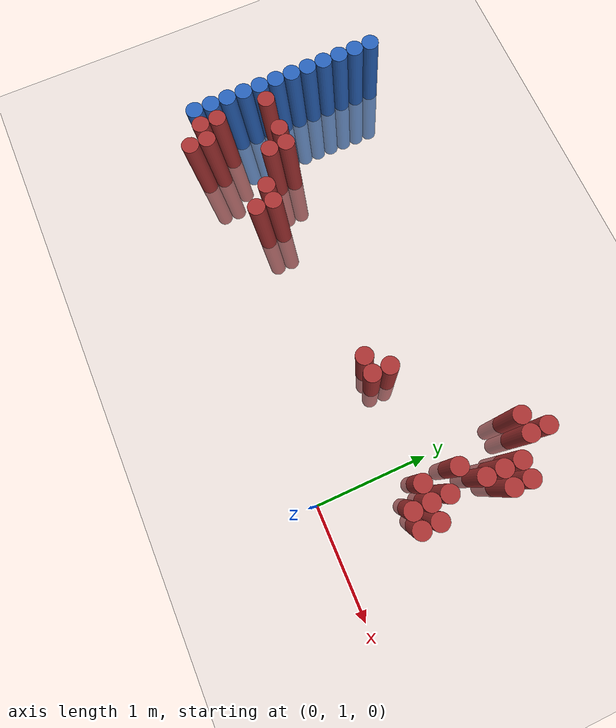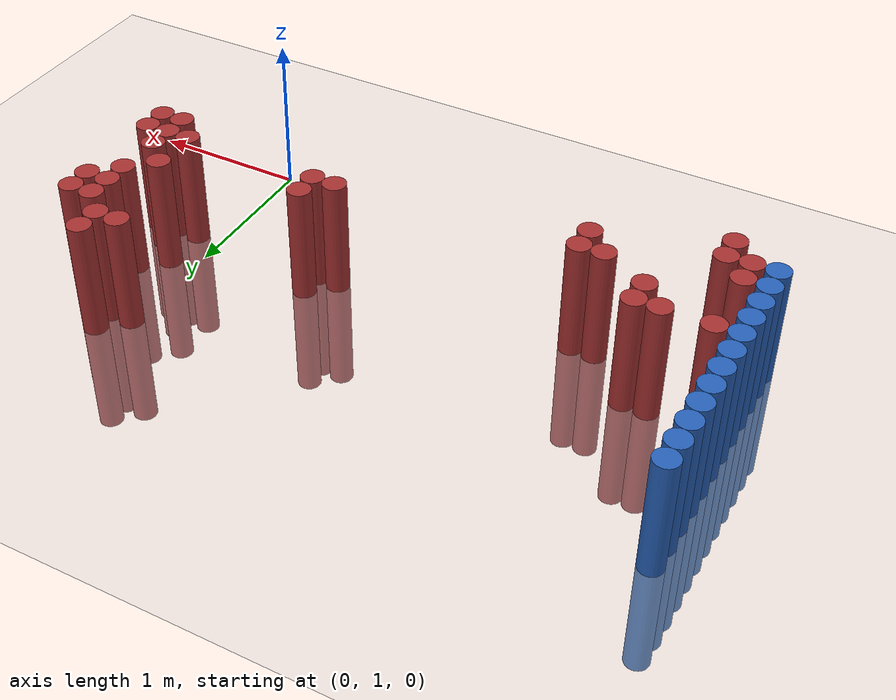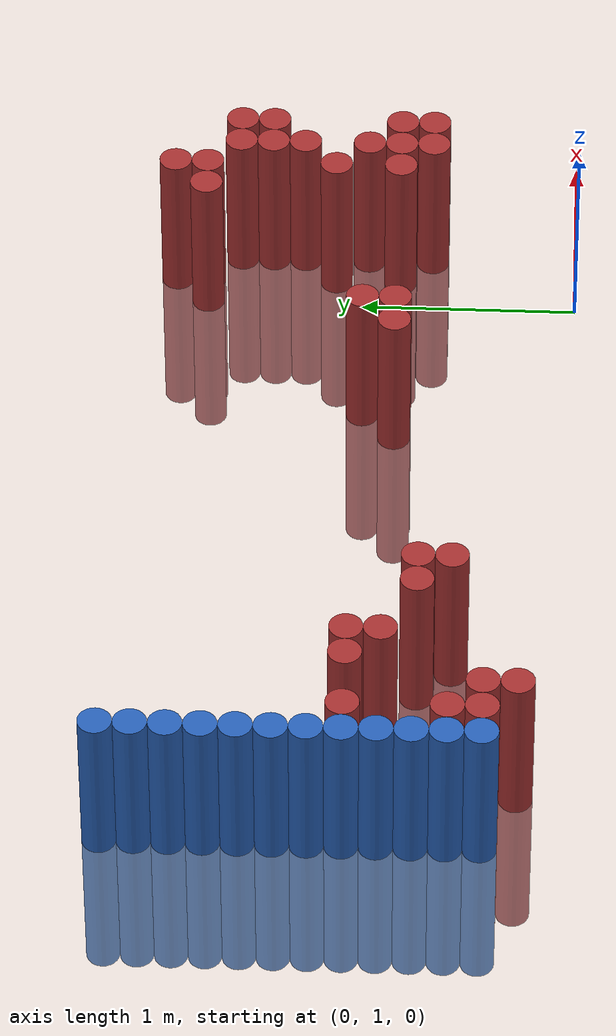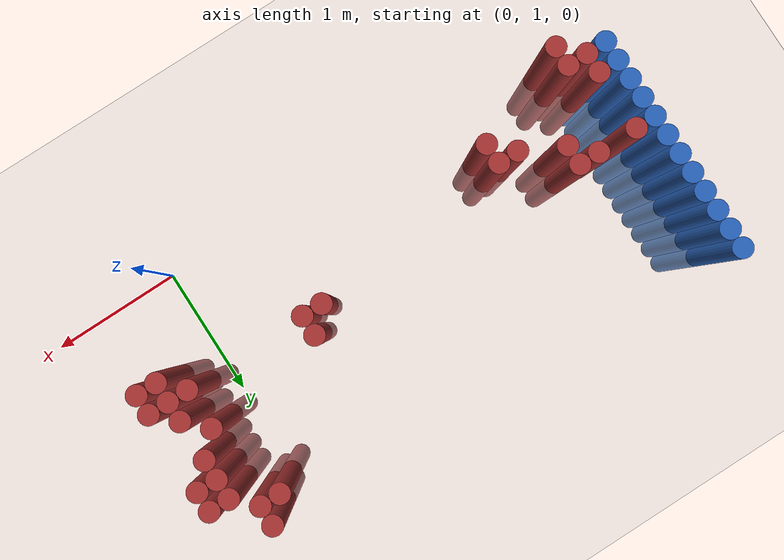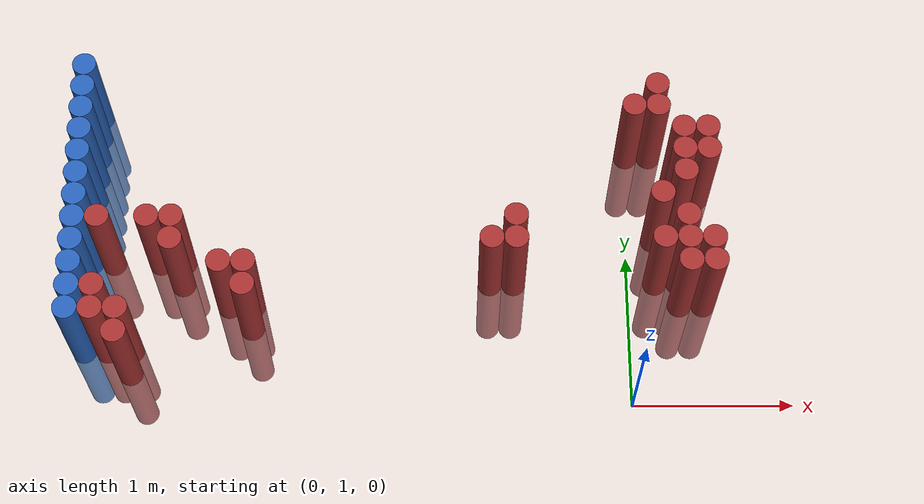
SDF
<sdf version="1.6">
 <world name="default">
  <model name="ground_plane">
   <static>1</static>
   <link name="link">
    <collision name="collision">
     <geometry><plane><normal>0 0 1</normal><size>100 100</size></plane></geometry>
     <surface><friction><ode><mu>100</mu><mu2>50</mu2></ode></friction></surface>
    </collision>
    <visual name="visual">
     <cast_shadows>0</cast_shadows>
     <geometry><plane><normal>0 0 1</normal><size>100 100</size></plane></geometry>
     <material>
      <script><uri>file://media/materials/scripts/gazebo.material</uri><name>Gazebo/Grey</name></script>
     </material>
    </visual>
   </link>
  </model>
  <model name="unit_cylinder_133">
   <static>1</static>
   <pose>-3.425000 1.375000 0.000000 0.000000 0.000000 0.000000</pose>
   <link name="link">
    <inertial>
     <mass>1</mass>
     <inertia><ixx>0.145833</ixx><ixy>0</ixy><ixz>0</ixz><iyy>0.145833</iyy><iyz>0</iyz><izz>0.125</izz></inertia>
    </inertial>
    <collision name="collision">
     <geometry><cylinder><radius>0.075000</radius><length>1.5</length></cylinder></geometry>
    </collision>
    <visual name="visual">
     <geometry><cylinder><radius>0.075000</radius><length>1.5</length></cylinder></geometry>
     <material>
      <ambient>0.152000 0.379000 0.720000 1</ambient>
      <diffuse>0.152000 0.379000 0.720000 1</diffuse>
     </material>
     <material>
      <script><name>Gazebo/Grey</name><uri>file://media/materials/scripts/gazebo.material</uri></script>
     </material>
    </visual>
   </link>
  </model>
  <model name="unit_cylinder_135">
   <static>1</static>
   <pose>-3.425000 1.525000 0.000000 0.000000 0.000000 0.000000</pose>
   <link name="link">
    <inertial>
     <mass>1</mass>
     <inertia><ixx>0.145833</ixx><ixy>0</ixy><ixz>0</ixz><iyy>0.145833</iyy><iyz>0</iyz><izz>0.125</izz></inertia>
    </inertial>
    <collision name="collision">
     <geometry><cylinder><radius>0.075000</radius><length>1.5</length></cylinder></geometry>
    </collision>
    <visual name="visual">
     <geometry><cylinder><radius>0.075000</radius><length>1.5</length></cylinder></geometry>
     <material>
      <ambient>0.152000 0.379000 0.720000 1</ambient>
      <diffuse>0.152000 0.379000 0.720000 1</diffuse>
     </material>
     <material>
      <script><name>Gazebo/Grey</name><uri>file://media/materials/scripts/gazebo.material</uri></script>
     </material>
    </visual>
   </link>
  </model>
  <model name="unit_cylinder_137">
   <static>1</static>
   <pose>-3.425000 1.675000 0.000000 0.000000 0.000000 0.000000</pose>
   <link name="link">
    <inertial>
     <mass>1</mass>
     <inertia><ixx>0.145833</ixx><ixy>0</ixy><ixz>0</ixz><iyy>0.145833</iyy><iyz>0</iyz><izz>0.125</izz></inertia>
    </inertial>
    <collision name="collision">
     <geometry><cylinder><radius>0.075000</radius><length>1.5</length></cylinder></geometry>
    </collision>
    <visual name="visual">
     <geometry><cylinder><radius>0.075000</radius><length>1.5</length></cylinder></geometry>
     <material>
      <ambient>0.152000 0.379000 0.720000 1</ambient>
      <diffuse>0.152000 0.379000 0.720000 1</diffuse>
     </material>
     <material>
      <script><name>Gazebo/Grey</name><uri>file://media/materials/scripts/gazebo.material</uri></script>
     </material>
    </visual>
   </link>
  </model>
  <model name="unit_cylinder_139">
   <static>1</static>
   <pose>-3.425000 1.825000 0.000000 0.000000 0.000000 0.000000</pose>
   <link name="link">
    <inertial>
     <mass>1</mass>
     <inertia><ixx>0.145833</ixx><ixy>0</ixy><ixz>0</ixz><iyy>0.145833</iyy><iyz>0</iyz><izz>0.125</izz></inertia>
    </inertial>
    <collision name="collision">
     <geometry><cylinder><radius>0.075000</radius><length>1.5</length></cylinder></geometry>
    </collision>
    <visual name="visual">
     <geometry><cylinder><radius>0.075000</radius><length>1.5</length></cylinder></geometry>
     <material>
      <ambient>0.152000 0.379000 0.720000 1</ambient>
      <diffuse>0.152000 0.379000 0.720000 1</diffuse>
     </material>
     <material>
      <script><name>Gazebo/Grey</name><uri>file://media/materials/scripts/gazebo.material</uri></script>
     </material>
    </visual>
   </link>
  </model>
  <model name="unit_cylinder_141">
   <static>1</static>
   <pose>-3.425000 1.975000 0.000000 0.000000 0.000000 0.000000</pose>
   <link name="link">
    <inertial>
     <mass>1</mass>
     <inertia><ixx>0.145833</ixx><ixy>0</ixy><ixz>0</ixz><iyy>0.145833</iyy><iyz>0</iyz><izz>0.125</izz></inertia>
    </inertial>
    <collision name="collision">
     <geometry><cylinder><radius>0.075000</radius><length>1.5</length></cylinder></geometry>
    </collision>
    <visual name="visual">
     <geometry><cylinder><radius>0.075000</radius><length>1.5</length></cylinder></geometry>
     <material>
      <ambient>0.152000 0.379000 0.720000 1</ambient>
      <diffuse>0.152000 0.379000 0.720000 1</diffuse>
     </material>
     <material>
      <script><name>Gazebo/Grey</name><uri>file://media/materials/scripts/gazebo.material</uri></script>
     </material>
    </visual>
   </link>
  </model>
  <model name="unit_cylinder_143">
   <static>1</static>
   <pose>-3.425000 2.125000 0.000000 0.000000 0.000000 0.000000</pose>
   <link name="link">
    <inertial>
     <mass>1</mass>
     <inertia><ixx>0.145833</ixx><ixy>0</ixy><ixz>0</ixz><iyy>0.145833</iyy><iyz>0</iyz><izz>0.125</izz></inertia>
    </inertial>
    <collision name="collision">
     <geometry><cylinder><radius>0.075000</radius><length>1.5</length></cylinder></geometry>
    </collision>
    <visual name="visual">
     <geometry><cylinder><radius>0.075000</radius><length>1.5</length></cylinder></geometry>
     <material>
      <ambient>0.152000 0.379000 0.720000 1</ambient>
      <diffuse>0.152000 0.379000 0.720000 1</diffuse>
     </material>
     <material>
      <script><name>Gazebo/Grey</name><uri>file://media/materials/scripts/gazebo.material</uri></script>
     </material>
    </visual>
   </link>
  </model>
  <model name="unit_cylinder_145">
   <static>1</static>
   <pose>-3.425000 2.275000 0.000000 0.000000 0.000000 0.000000</pose>
   <link name="link">
    <inertial>
     <mass>1</mass>
     <inertia><ixx>0.145833</ixx><ixy>0</ixy><ixz>0</ixz><iyy>0.145833</iyy><iyz>0</iyz><izz>0.125</izz></inertia>
    </inertial>
    <collision name="collision">
     <geometry><cylinder><radius>0.075000</radius><length>1.5</length></cylinder></geometry>
    </collision>
    <visual name="visual">
     <geometry><cylinder><radius>0.075000</radius><length>1.5</length></cylinder></geometry>
     <material>
      <ambient>0.152000 0.379000 0.720000 1</ambient>
      <diffuse>0.152000 0.379000 0.720000 1</diffuse>
     </material>
     <material>
      <script><name>Gazebo/Grey</name><uri>file://media/materials/scripts/gazebo.material</uri></script>
     </material>
    </visual>
   </link>
  </model>
  <model name="unit_cylinder_147">
   <static>1</static>
   <pose>-3.425000 2.425000 0.000000 0.000000 0.000000 0.000000</pose>
   <link name="link">
    <inertial>
     <mass>1</mass>
     <inertia><ixx>0.145833</ixx><ixy>0</ixy><ixz>0</ixz><iyy>0.145833</iyy><iyz>0</iyz><izz>0.125</izz></inertia>
    </inertial>
    <collision name="collision">
     <geometry><cylinder><radius>0.075000</radius><length>1.5</length></cylinder></geometry>
    </collision>
    <visual name="visual">
     <geometry><cylinder><radius>0.075000</radius><length>1.5</length></cylinder></geometry>
     <material>
      <ambient>0.152000 0.379000 0.720000 1</ambient>
      <diffuse>0.152000 0.379000 0.720000 1</diffuse>
     </material>
     <material>
      <script><name>Gazebo/Grey</name><uri>file://media/materials/scripts/gazebo.material</uri></script>
     </material>
    </visual>
   </link>
  </model>
  <model name="unit_cylinder_149">
   <static>1</static>
   <pose>-3.425000 2.575000 0.000000 0.000000 0.000000 0.000000</pose>
   <link name="link">
    <inertial>
     <mass>1</mass>
     <inertia><ixx>0.145833</ixx><ixy>0</ixy><ixz>0</ixz><iyy>0.145833</iyy><iyz>0</iyz><izz>0.125</izz></inertia>
    </inertial>
    <collision name="collision">
     <geometry><cylinder><radius>0.075000</radius><length>1.5</length></cylinder></geometry>
    </collision>
    <visual name="visual">
     <geometry><cylinder><radius>0.075000</radius><length>1.5</length></cylinder></geometry>
     <material>
      <ambient>0.152000 0.379000 0.720000 1</ambient>
      <diffuse>0.152000 0.379000 0.720000 1</diffuse>
     </material>
     <material>
      <script><name>Gazebo/Grey</name><uri>file://media/materials/scripts/gazebo.material</uri></script>
     </material>
    </visual>
   </link>
  </model>
  <model name="unit_cylinder_151">
   <static>1</static>
   <pose>-3.425000 2.725000 0.000000 0.000000 0.000000 0.000000</pose>
   <link name="link">
    <inertial>
     <mass>1</mass>
     <inertia><ixx>0.145833</ixx><ixy>0</ixy><ixz>0</ixz><iyy>0.145833</iyy><iyz>0</iyz><izz>0.125</izz></inertia>
    </inertial>
    <collision name="collision">
     <geometry><cylinder><radius>0.075000</radius><length>1.5</length></cylinder></geometry>
    </collision>
    <visual name="visual">
     <geometry><cylinder><radius>0.075000</radius><length>1.5</length></cylinder></geometry>
     <material>
      <ambient>0.152000 0.379000 0.720000 1</ambient>
      <diffuse>0.152000 0.379000 0.720000 1</diffuse>
     </material>
     <material>
      <script><name>Gazebo/Grey</name><uri>file://media/materials/scripts/gazebo.material</uri></script>
     </material>
    </visual>
   </link>
  </model>
  <model name="unit_cylinder_153">
   <static>1</static>
   <pose>-3.425000 2.875000 0.000000 0.000000 0.000000 0.000000</pose>
   <link name="link">
    <inertial>
     <mass>1</mass>
     <inertia><ixx>0.145833</ixx><ixy>0</ixy><ixz>0</ixz><iyy>0.145833</iyy><iyz>0</iyz><izz>0.125</izz></inertia>
    </inertial>
    <collision name="collision">
     <geometry><cylinder><radius>0.075000</radius><length>1.5</length></cylinder></geometry>
    </collision>
    <visual name="visual">
     <geometry><cylinder><radius>0.075000</radius><length>1.5</length></cylinder></geometry>
     <material>
      <ambient>0.152000 0.379000 0.720000 1</ambient>
      <diffuse>0.152000 0.379000 0.720000 1</diffuse>
     </material>
     <material>
      <script><name>Gazebo/Grey</name><uri>file://media/materials/scripts/gazebo.material</uri></script>
     </material>
    </visual>
   </link>
  </model>
  <model name="unit_cylinder_155">
   <static>1</static>
   <pose>-3.425000 3.025000 0.000000 0.000000 0.000000 0.000000</pose>
   <link name="link">
    <inertial>
     <mass>1</mass>
     <inertia><ixx>0.145833</ixx><ixy>0</ixy><ixz>0</ixz><iyy>0.145833</iyy><iyz>0</iyz><izz>0.125</izz></inertia>
    </inertial>
    <collision name="collision">
     <geometry><cylinder><radius>0.075000</radius><length>1.5</length></cylinder></geometry>
    </collision>
    <visual name="visual">
     <geometry><cylinder><radius>0.075000</radius><length>1.5</length></cylinder></geometry>
     <material>
      <ambient>0.152000 0.379000 0.720000 1</ambient>
      <diffuse>0.152000 0.379000 0.720000 1</diffuse>
     </material>
     <material>
      <script><name>Gazebo/Grey</name><uri>file://media/materials/scripts/gazebo.material</uri></script>
     </material>
    </visual>
   </link>
  </model>
  <model name="unit_cylinder_230">
   <static>1</static>
   <pose>-3.425000 1.375000 0.000000 0.000000 0.000000 0.000000</pose>
   <link name="link">
    <inertial>
     <mass>1</mass>
     <inertia><ixx>0.145833</ixx><ixy>0</ixy><ixz>0</ixz><iyy>0.145833</iyy><iyz>0</iyz><izz>0.125</izz></inertia>
    </inertial>
    <collision name="collision">
     <geometry><cylinder><radius>0.075000</radius><length>1.5</length></cylinder></geometry>
    </collision>
    <visual name="visual">
     <geometry><cylinder><radius>0.075000</radius><length>1.5</length></cylinder></geometry>
     <material>
      <ambient>0.152000 0.379000 0.720000 1</ambient>
      <diffuse>0.152000 0.379000 0.720000 1</diffuse>
     </material>
     <material>
      <script><name>Gazebo/Grey</name><uri>file://media/materials/scripts/gazebo.material</uri></script>
     </material>
    </visual>
   </link>
  </model>
  <model name="unit_cylinder_231">
   <static>1</static>
   <pose>-3.425000 1.525000 0.000000 0.000000 0.000000 0.000000</pose>
   <link name="link">
    <inertial>
     <mass>1</mass>
     <inertia><ixx>0.145833</ixx><ixy>0</ixy><ixz>0</ixz><iyy>0.145833</iyy><iyz>0</iyz><izz>0.125</izz></inertia>
    </inertial>
    <collision name="collision">
     <geometry><cylinder><radius>0.075000</radius><length>1.5</length></cylinder></geometry>
    </collision>
    <visual name="visual">
     <geometry><cylinder><radius>0.075000</radius><length>1.5</length></cylinder></geometry>
     <material>
      <ambient>0.152000 0.379000 0.720000 1</ambient>
      <diffuse>0.152000 0.379000 0.720000 1</diffuse>
     </material>
     <material>
      <script><name>Gazebo/Grey</name><uri>file://media/materials/scripts/gazebo.material</uri></script>
     </material>
    </visual>
   </link>
  </model>
  <model name="unit_cylinder_232">
   <static>1</static>
   <pose>-3.425000 1.675000 0.000000 0.000000 0.000000 0.000000</pose>
   <link name="link">
    <inertial>
     <mass>1</mass>
     <inertia><ixx>0.145833</ixx><ixy>0</ixy><ixz>0</ixz><iyy>0.145833</iyy><iyz>0</iyz><izz>0.125</izz></inertia>
    </inertial>
    <collision name="collision">
     <geometry><cylinder><radius>0.075000</radius><length>1.5</length></cylinder></geometry>
    </collision>
    <visual name="visual">
     <geometry><cylinder><radius>0.075000</radius><length>1.5</length></cylinder></geometry>
     <material>
      <ambient>0.152000 0.379000 0.720000 1</ambient>
      <diffuse>0.152000 0.379000 0.720000 1</diffuse>
     </material>
     <material>
      <script><name>Gazebo/Grey</name><uri>file://media/materials/scripts/gazebo.material</uri></script>
     </material>
    </visual>
   </link>
  </model>
  <model name="unit_cylinder_233">
   <static>1</static>
   <pose>-3.425000 1.825000 0.000000 0.000000 0.000000 0.000000</pose>
   <link name="link">
    <inertial>
     <mass>1</mass>
     <inertia><ixx>0.145833</ixx><ixy>0</ixy><ixz>0</ixz><iyy>0.145833</iyy><iyz>0</iyz><izz>0.125</izz></inertia>
    </inertial>
    <collision name="collision">
     <geometry><cylinder><radius>0.075000</radius><length>1.5</length></cylinder></geometry>
    </collision>
    <visual name="visual">
     <geometry><cylinder><radius>0.075000</radius><length>1.5</length></cylinder></geometry>
     <material>
      <ambient>0.152000 0.379000 0.720000 1</ambient>
      <diffuse>0.152000 0.379000 0.720000 1</diffuse>
     </material>
     <material>
      <script><name>Gazebo/Grey</name><uri>file://media/materials/scripts/gazebo.material</uri></script>
     </material>
    </visual>
   </link>
  </model>
  <model name="unit_cylinder_234">
   <static>1</static>
   <pose>-3.425000 1.975000 0.000000 0.000000 0.000000 0.000000</pose>
   <link name="link">
    <inertial>
     <mass>1</mass>
     <inertia><ixx>0.145833</ixx><ixy>0</ixy><ixz>0</ixz><iyy>0.145833</iyy><iyz>0</iyz><izz>0.125</izz></inertia>
    </inertial>
    <collision name="collision">
     <geometry><cylinder><radius>0.075000</radius><length>1.5</length></cylinder></geometry>
    </collision>
    <visual name="visual">
     <geometry><cylinder><radius>0.075000</radius><length>1.5</length></cylinder></geometry>
     <material>
      <ambient>0.152000 0.379000 0.720000 1</ambient>
      <diffuse>0.152000 0.379000 0.720000 1</diffuse>
     </material>
     <material>
      <script><name>Gazebo/Grey</name><uri>file://media/materials/scripts/gazebo.material</uri></script>
     </material>
    </visual>
   </link>
  </model>
  <model name="unit_cylinder_235">
   <static>1</static>
   <pose>-3.425000 2.125000 0.000000 0.000000 0.000000 0.000000</pose>
   <link name="link">
    <inertial>
     <mass>1</mass>
     <inertia><ixx>0.145833</ixx><ixy>0</ixy><ixz>0</ixz><iyy>0.145833</iyy><iyz>0</iyz><izz>0.125</izz></inertia>
    </inertial>
    <collision name="collision">
     <geometry><cylinder><radius>0.075000</radius><length>1.5</length></cylinder></geometry>
    </collision>
    <visual name="visual">
     <geometry><cylinder><radius>0.075000</radius><length>1.5</length></cylinder></geometry>
     <material>
      <ambient>0.152000 0.379000 0.720000 1</ambient>
      <diffuse>0.152000 0.379000 0.720000 1</diffuse>
     </material>
     <material>
      <script><name>Gazebo/Grey</name><uri>file://media/materials/scripts/gazebo.material</uri></script>
     </material>
    </visual>
   </link>
  </model>
  <model name="unit_cylinder_236">
   <static>1</static>
   <pose>-3.425000 2.275000 0.000000 0.000000 0.000000 0.000000</pose>
   <link name="link">
    <inertial>
     <mass>1</mass>
     <inertia><ixx>0.145833</ixx><ixy>0</ixy><ixz>0</ixz><iyy>0.145833</iyy><iyz>0</iyz><izz>0.125</izz></inertia>
    </inertial>
    <collision name="collision">
     <geometry><cylinder><radius>0.075000</radius><length>1.5</length></cylinder></geometry>
    </collision>
    <visual name="visual">
     <geometry><cylinder><radius>0.075000</radius><length>1.5</length></cylinder></geometry>
     <material>
      <ambient>0.152000 0.379000 0.720000 1</ambient>
      <diffuse>0.152000 0.379000 0.720000 1</diffuse>
     </material>
     <material>
      <script><name>Gazebo/Grey</name><uri>file://media/materials/scripts/gazebo.material</uri></script>
     </material>
    </visual>
   </link>
  </model>
  <model name="unit_cylinder_237">
   <static>1</static>
   <pose>-3.425000 2.425000 0.000000 0.000000 0.000000 0.000000</pose>
   <link name="link">
    <inertial>
     <mass>1</mass>
     <inertia><ixx>0.145833</ixx><ixy>0</ixy><ixz>0</ixz><iyy>0.145833</iyy><iyz>0</iyz><izz>0.125</izz></inertia>
    </inertial>
    <collision name="collision">
     <geometry><cylinder><radius>0.075000</radius><length>1.5</length></cylinder></geometry>
    </collision>
    <visual name="visual">
     <geometry><cylinder><radius>0.075000</radius><length>1.5</length></cylinder></geometry>
     <material>
      <ambient>0.152000 0.379000 0.720000 1</ambient>
      <diffuse>0.152000 0.379000 0.720000 1</diffuse>
     </material>
     <material>
      <script><name>Gazebo/Grey</name><uri>file://media/materials/scripts/gazebo.material</uri></script>
     </material>
    </visual>
   </link>
  </model>
  <model name="unit_cylinder_238">
   <static>1</static>
   <pose>-3.425000 2.575000 0.000000 0.000000 0.000000 0.000000</pose>
   <link name="link">
    <inertial>
     <mass>1</mass>
     <inertia><ixx>0.145833</ixx><ixy>0</ixy><ixz>0</ixz><iyy>0.145833</iyy><iyz>0</iyz><izz>0.125</izz></inertia>
    </inertial>
    <collision name="collision">
     <geometry><cylinder><radius>0.075000</radius><length>1.5</length></cylinder></geometry>
    </collision>
    <visual name="visual">
     <geometry><cylinder><radius>0.075000</radius><length>1.5</length></cylinder></geometry>
     <material>
      <ambient>0.152000 0.379000 0.720000 1</ambient>
      <diffuse>0.152000 0.379000 0.720000 1</diffuse>
     </material>
     <material>
      <script><name>Gazebo/Grey</name><uri>file://media/materials/scripts/gazebo.material</uri></script>
     </material>
    </visual>
   </link>
  </model>
  <model name="unit_cylinder_239">
   <static>1</static>
   <pose>-3.425000 2.725000 0.000000 0.000000 0.000000 0.000000</pose>
   <link name="link">
    <inertial>
     <mass>1</mass>
     <inertia><ixx>0.145833</ixx><ixy>0</ixy><ixz>0</ixz><iyy>0.145833</iyy><iyz>0</iyz><izz>0.125</izz></inertia>
    </inertial>
    <collision name="collision">
     <geometry><cylinder><radius>0.075000</radius><length>1.5</length></cylinder></geometry>
    </collision>
    <visual name="visual">
     <geometry><cylinder><radius>0.075000</radius><length>1.5</length></cylinder></geometry>
     <material>
      <ambient>0.152000 0.379000 0.720000 1</ambient>
      <diffuse>0.152000 0.379000 0.720000 1</diffuse>
     </material>
     <material>
      <script><name>Gazebo/Grey</name><uri>file://media/materials/scripts/gazebo.material</uri></script>
     </material>
    </visual>
   </link>
  </model>
  <model name="unit_cylinder_240">
   <static>1</static>
   <pose>-3.425000 2.875000 0.000000 0.000000 0.000000 0.000000</pose>
   <link name="link">
    <inertial>
     <mass>1</mass>
     <inertia><ixx>0.145833</ixx><ixy>0</ixy><ixz>0</ixz><iyy>0.145833</iyy><iyz>0</iyz><izz>0.125</izz></inertia>
    </inertial>
    <collision name="collision">
     <geometry><cylinder><radius>0.075000</radius><length>1.5</length></cylinder></geometry>
    </collision>
    <visual name="visual">
     <geometry><cylinder><radius>0.075000</radius><length>1.5</length></cylinder></geometry>
     <material>
      <ambient>0.152000 0.379000 0.720000 1</ambient>
      <diffuse>0.152000 0.379000 0.720000 1</diffuse>
     </material>
     <material>
      <script><name>Gazebo/Grey</name><uri>file://media/materials/scripts/gazebo.material</uri></script>
     </material>
    </visual>
   </link>
  </model>
  <model name="unit_cylinder_264">
   <static>1</static>
   <pose>-3.275000 1.375000 0.000000 0.000000 0.000000 0.000000</pose>
   <link name="link">
    <inertial>
     <mass>1</mass>
     <inertia><ixx>0.145833</ixx><ixy>0</ixy><ixz>0</ixz><iyy>0.145833</iyy><iyz>0</iyz><izz>0.125</izz></inertia>
    </inertial>
    <collision name="collision">
     <geometry><cylinder><radius>0.075000</radius><length>1.5</length></cylinder></geometry>
    </collision>
    <visual name="visual">
     <geometry><cylinder><radius>0.075000</radius><length>1.5</length></cylinder></geometry>
     <material>
      <ambient>0.648000 0.192000 0.192000 1</ambient>
      <diffuse>0.648000 0.192000 0.192000 1</diffuse>
     </material>
     <material>
      <script><name>Gazebo/Grey</name><uri>file://media/materials/scripts/gazebo.material</uri></script>
     </material>
    </visual>
   </link>
  </model>
  <model name="unit_cylinder_265">
   <static>1</static>
   <pose>-3.275000 1.525000 0.000000 0.000000 0.000000 0.000000</pose>
   <link name="link">
    <inertial>
     <mass>1</mass>
     <inertia><ixx>0.145833</ixx><ixy>0</ixy><ixz>0</ixz><iyy>0.145833</iyy><iyz>0</iyz><izz>0.125</izz></inertia>
    </inertial>
    <collision name="collision">
     <geometry><cylinder><radius>0.075000</radius><length>1.5</length></cylinder></geometry>
    </collision>
    <visual name="visual">
     <geometry><cylinder><radius>0.075000</radius><length>1.5</length></cylinder></geometry>
     <material>
      <ambient>0.648000 0.192000 0.192000 1</ambient>
      <diffuse>0.648000 0.192000 0.192000 1</diffuse>
     </material>
     <material>
      <script><name>Gazebo/Grey</name><uri>file://media/materials/scripts/gazebo.material</uri></script>
     </material>
    </visual>
   </link>
  </model>
  <model name="unit_cylinder_266">
   <static>1</static>
   <pose>-3.275000 1.975000 0.000000 0.000000 0.000000 0.000000</pose>
   <link name="link">
    <inertial>
     <mass>1</mass>
     <inertia><ixx>0.145833</ixx><ixy>0</ixy><ixz>0</ixz><iyy>0.145833</iyy><iyz>0</iyz><izz>0.125</izz></inertia>
    </inertial>
    <collision name="collision">
     <geometry><cylinder><radius>0.075000</radius><length>1.5</length></cylinder></geometry>
    </collision>
    <visual name="visual">
     <geometry><cylinder><radius>0.075000</radius><length>1.5</length></cylinder></geometry>
     <material>
      <ambient>0.648000 0.192000 0.192000 1</ambient>
      <diffuse>0.648000 0.192000 0.192000 1</diffuse>
     </material>
     <material>
      <script><name>Gazebo/Grey</name><uri>file://media/materials/scripts/gazebo.material</uri></script>
     </material>
    </visual>
   </link>
  </model>
  <model name="unit_cylinder_278">
   <static>1</static>
   <pose>-3.125000 1.225000 0.000000 0.000000 0.000000 0.000000</pose>
   <link name="link">
    <inertial>
     <mass>1</mass>
     <inertia><ixx>0.145833</ixx><ixy>0</ixy><ixz>0</ixz><iyy>0.145833</iyy><iyz>0</iyz><izz>0.125</izz></inertia>
    </inertial>
    <collision name="collision">
     <geometry><cylinder><radius>0.075000</radius><length>1.5</length></cylinder></geometry>
    </collision>
    <visual name="visual">
     <geometry><cylinder><radius>0.075000</radius><length>1.5</length></cylinder></geometry>
     <material>
      <ambient>0.648000 0.192000 0.192000 1</ambient>
      <diffuse>0.648000 0.192000 0.192000 1</diffuse>
     </material>
     <material>
      <script><name>Gazebo/Grey</name><uri>file://media/materials/scripts/gazebo.material</uri></script>
     </material>
    </visual>
   </link>
  </model>
  <model name="unit_cylinder_279">
   <static>1</static>
   <pose>-3.125000 1.375000 0.000000 0.000000 0.000000 0.000000</pose>
   <link name="link">
    <inertial>
     <mass>1</mass>
     <inertia><ixx>0.145833</ixx><ixy>0</ixy><ixz>0</ixz><iyy>0.145833</iyy><iyz>0</iyz><izz>0.125</izz></inertia>
    </inertial>
    <collision name="collision">
     <geometry><cylinder><radius>0.075000</radius><length>1.5</length></cylinder></geometry>
    </collision>
    <visual name="visual">
     <geometry><cylinder><radius>0.075000</radius><length>1.5</length></cylinder></geometry>
     <material>
      <ambient>0.648000 0.192000 0.192000 1</ambient>
      <diffuse>0.648000 0.192000 0.192000 1</diffuse>
     </material>
     <material>
      <script><name>Gazebo/Grey</name><uri>file://media/materials/scripts/gazebo.material</uri></script>
     </material>
    </visual>
   </link>
  </model>
  <model name="unit_cylinder_282">
   <static>1</static>
   <pose>-2.975000 1.975000 0.000000 0.000000 0.000000 0.000000</pose>
   <link name="link">
    <inertial>
     <mass>1</mass>
     <inertia><ixx>0.145833</ixx><ixy>0</ixy><ixz>0</ixz><iyy>0.145833</iyy><iyz>0</iyz><izz>0.125</izz></inertia>
    </inertial>
    <collision name="collision">
     <geometry><cylinder><radius>0.075000</radius><length>1.5</length></cylinder></geometry>
    </collision>
    <visual name="visual">
     <geometry><cylinder><radius>0.075000</radius><length>1.5</length></cylinder></geometry>
     <material>
      <ambient>0.648000 0.192000 0.192000 1</ambient>
      <diffuse>0.648000 0.192000 0.192000 1</diffuse>
     </material>
     <material>
      <script><name>Gazebo/Grey</name><uri>file://media/materials/scripts/gazebo.material</uri></script>
     </material>
    </visual>
   </link>
  </model>
  <model name="unit_cylinder_283">
   <static>1</static>
   <pose>-2.825000 1.825000 0.000000 0.000000 0.000000 0.000000</pose>
   <link name="link">
    <inertial>
     <mass>1</mass>
     <inertia><ixx>0.145833</ixx><ixy>0</ixy><ixz>0</ixz><iyy>0.145833</iyy><iyz>0</iyz><izz>0.125</izz></inertia>
    </inertial>
    <collision name="collision">
     <geometry><cylinder><radius>0.075000</radius><length>1.5</length></cylinder></geometry>
    </collision>
    <visual name="visual">
     <geometry><cylinder><radius>0.075000</radius><length>1.5</length></cylinder></geometry>
     <material>
      <ambient>0.648000 0.192000 0.192000 1</ambient>
      <diffuse>0.648000 0.192000 0.192000 1</diffuse>
     </material>
     <material>
      <script><name>Gazebo/Grey</name><uri>file://media/materials/scripts/gazebo.material</uri></script>
     </material>
    </visual>
   </link>
  </model>
  <model name="unit_cylinder_284">
   <static>1</static>
   <pose>-2.825000 1.975000 0.000000 0.000000 0.000000 0.000000</pose>
   <link name="link">
    <inertial>
     <mass>1</mass>
     <inertia><ixx>0.145833</ixx><ixy>0</ixy><ixz>0</ixz><iyy>0.145833</iyy><iyz>0</iyz><izz>0.125</izz></inertia>
    </inertial>
    <collision name="collision">
     <geometry><cylinder><radius>0.075000</radius><length>1.5</length></cylinder></geometry>
    </collision>
    <visual name="visual">
     <geometry><cylinder><radius>0.075000</radius><length>1.5</length></cylinder></geometry>
     <material>
      <ambient>0.648000 0.192000 0.192000 1</ambient>
      <diffuse>0.648000 0.192000 0.192000 1</diffuse>
     </material>
     <material>
      <script><name>Gazebo/Grey</name><uri>file://media/materials/scripts/gazebo.material</uri></script>
     </material>
    </visual>
   </link>
  </model>
  <model name="unit_cylinder_286">
   <static>1</static>
   <pose>-2.525000 1.675000 0.000000 0.000000 0.000000 0.000000</pose>
   <link name="link">
    <inertial>
     <mass>1</mass>
     <inertia><ixx>0.145833</ixx><ixy>0</ixy><ixz>0</ixz><iyy>0.145833</iyy><iyz>0</iyz><izz>0.125</izz></inertia>
    </inertial>
    <collision name="collision">
     <geometry><cylinder><radius>0.075000</radius><length>1.5</length></cylinder></geometry>
    </collision>
    <visual name="visual">
     <geometry><cylinder><radius>0.075000</radius><length>1.5</length></cylinder></geometry>
     <material>
      <ambient>0.648000 0.192000 0.192000 1</ambient>
      <diffuse>0.648000 0.192000 0.192000 1</diffuse>
     </material>
     <material>
      <script><name>Gazebo/Grey</name><uri>file://media/materials/scripts/gazebo.material</uri></script>
     </material>
    </visual>
   </link>
  </model>
  <model name="unit_cylinder_287">
   <static>1</static>
   <pose>-2.375000 1.525000 0.000000 0.000000 0.000000 0.000000</pose>
   <link name="link">
    <inertial>
     <mass>1</mass>
     <inertia><ixx>0.145833</ixx><ixy>0</ixy><ixz>0</ixz><iyy>0.145833</iyy><iyz>0</iyz><izz>0.125</izz></inertia>
    </inertial>
    <collision name="collision">
     <geometry><cylinder><radius>0.075000</radius><length>1.5</length></cylinder></geometry>
    </collision>
    <visual name="visual">
     <geometry><cylinder><radius>0.075000</radius><length>1.5</length></cylinder></geometry>
     <material>
      <ambient>0.648000 0.192000 0.192000 1</ambient>
      <diffuse>0.648000 0.192000 0.192000 1</diffuse>
     </material>
     <material>
      <script><name>Gazebo/Grey</name><uri>file://media/materials/scripts/gazebo.material</uri></script>
     </material>
    </visual>
   </link>
  </model>
  <model name="unit_cylinder_288">
   <static>1</static>
   <pose>-2.375000 1.675000 0.000000 0.000000 0.000000 0.000000</pose>
   <link name="link">
    <inertial>
     <mass>1</mass>
     <inertia><ixx>0.145833</ixx><ixy>0</ixy><ixz>0</ixz><iyy>0.145833</iyy><iyz>0</iyz><izz>0.125</izz></inertia>
    </inertial>
    <collision name="collision">
     <geometry><cylinder><radius>0.075000</radius><length>1.5</length></cylinder></geometry>
    </collision>
    <visual name="visual">
     <geometry><cylinder><radius>0.075000</radius><length>1.5</length></cylinder></geometry>
     <material>
      <ambient>0.648000 0.192000 0.192000 1</ambient>
      <diffuse>0.648000 0.192000 0.192000 1</diffuse>
     </material>
     <material>
      <script><name>Gazebo/Grey</name><uri>file://media/materials/scripts/gazebo.material</uri></script>
     </material>
    </visual>
   </link>
  </model>
  <model name="unit_cylinder_299">
   <static>1</static>
   <pose>-0.875000 1.825000 0.000000 0.000000 0.000000 0.000000</pose>
   <link name="link">
    <inertial>
     <mass>1</mass>
     <inertia><ixx>0.145833</ixx><ixy>0</ixy><ixz>0</ixz><iyy>0.145833</iyy><iyz>0</iyz><izz>0.125</izz></inertia>
    </inertial>
    <collision name="collision">
     <geometry><cylinder><radius>0.075000</radius><length>1.5</length></cylinder></geometry>
    </collision>
    <visual name="visual">
     <geometry><cylinder><radius>0.075000</radius><length>1.5</length></cylinder></geometry>
     <material>
      <ambient>0.648000 0.192000 0.192000 1</ambient>
      <diffuse>0.648000 0.192000 0.192000 1</diffuse>
     </material>
     <material>
      <script><name>Gazebo/Grey</name><uri>file://media/materials/scripts/gazebo.material</uri></script>
     </material>
    </visual>
   </link>
  </model>
  <model name="unit_cylinder_303">
   <static>1</static>
   <pose>-0.725000 1.825000 0.000000 0.000000 0.000000 0.000000</pose>
   <link name="link">
    <inertial>
     <mass>1</mass>
     <inertia><ixx>0.145833</ixx><ixy>0</ixy><ixz>0</ixz><iyy>0.145833</iyy><iyz>0</iyz><izz>0.125</izz></inertia>
    </inertial>
    <collision name="collision">
     <geometry><cylinder><radius>0.075000</radius><length>1.5</length></cylinder></geometry>
    </collision>
    <visual name="visual">
     <geometry><cylinder><radius>0.075000</radius><length>1.5</length></cylinder></geometry>
     <material>
      <ambient>0.648000 0.192000 0.192000 1</ambient>
      <diffuse>0.648000 0.192000 0.192000 1</diffuse>
     </material>
     <material>
      <script><name>Gazebo/Grey</name><uri>file://media/materials/scripts/gazebo.material</uri></script>
     </material>
    </visual>
   </link>
  </model>
  <model name="unit_cylinder_304">
   <static>1</static>
   <pose>-0.725000 1.975000 0.000000 0.000000 0.000000 0.000000</pose>
   <link name="link">
    <inertial>
     <mass>1</mass>
     <inertia><ixx>0.145833</ixx><ixy>0</ixy><ixz>0</ixz><iyy>0.145833</iyy><iyz>0</iyz><izz>0.125</izz></inertia>
    </inertial>
    <collision name="collision">
     <geometry><cylinder><radius>0.075000</radius><length>1.5</length></cylinder></geometry>
    </collision>
    <visual name="visual">
     <geometry><cylinder><radius>0.075000</radius><length>1.5</length></cylinder></geometry>
     <material>
      <ambient>0.648000 0.192000 0.192000 1</ambient>
      <diffuse>0.648000 0.192000 0.192000 1</diffuse>
     </material>
     <material>
      <script><name>Gazebo/Grey</name><uri>file://media/materials/scripts/gazebo.material</uri></script>
     </material>
    </visual>
   </link>
  </model>
  <model name="unit_cylinder_306">
   <static>1</static>
   <pose>0.025000 2.725000 0.000000 0.000000 0.000000 0.000000</pose>
   <link name="link">
    <inertial>
     <mass>1</mass>
     <inertia><ixx>0.145833</ixx><ixy>0</ixy><ixz>0</ixz><iyy>0.145833</iyy><iyz>0</iyz><izz>0.125</izz></inertia>
    </inertial>
    <collision name="collision">
     <geometry><cylinder><radius>0.075000</radius><length>1.5</length></cylinder></geometry>
    </collision>
    <visual name="visual">
     <geometry><cylinder><radius>0.075000</radius><length>1.5</length></cylinder></geometry>
     <material>
      <ambient>0.648000 0.192000 0.192000 1</ambient>
      <diffuse>0.648000 0.192000 0.192000 1</diffuse>
     </material>
     <material>
      <script><name>Gazebo/Grey</name><uri>file://media/materials/scripts/gazebo.material</uri></script>
     </material>
    </visual>
   </link>
  </model>
  <model name="unit_cylinder_307">
   <static>1</static>
   <pose>0.175000 1.825000 0.000000 0.000000 0.000000 0.000000</pose>
   <link name="link">
    <inertial>
     <mass>1</mass>
     <inertia><ixx>0.145833</ixx><ixy>0</ixy><ixz>0</ixz><iyy>0.145833</iyy><iyz>0</iyz><izz>0.125</izz></inertia>
    </inertial>
    <collision name="collision">
     <geometry><cylinder><radius>0.075000</radius><length>1.5</length></cylinder></geometry>
    </collision>
    <visual name="visual">
     <geometry><cylinder><radius>0.075000</radius><length>1.5</length></cylinder></geometry>
     <material>
      <ambient>0.648000 0.192000 0.192000 1</ambient>
      <diffuse>0.648000 0.192000 0.192000 1</diffuse>
     </material>
     <material>
      <script><name>Gazebo/Grey</name><uri>file://media/materials/scripts/gazebo.material</uri></script>
     </material>
    </visual>
   </link>
  </model>
  <model name="unit_cylinder_308">
   <static>1</static>
   <pose>0.175000 2.125000 0.000000 0.000000 0.000000 0.000000</pose>
   <link name="link">
    <inertial>
     <mass>1</mass>
     <inertia><ixx>0.145833</ixx><ixy>0</ixy><ixz>0</ixz><iyy>0.145833</iyy><iyz>0</iyz><izz>0.125</izz></inertia>
    </inertial>
    <collision name="collision">
     <geometry><cylinder><radius>0.075000</radius><length>1.5</length></cylinder></geometry>
    </collision>
    <visual name="visual">
     <geometry><cylinder><radius>0.075000</radius><length>1.5</length></cylinder></geometry>
     <material>
      <ambient>0.648000 0.192000 0.192000 1</ambient>
      <diffuse>0.648000 0.192000 0.192000 1</diffuse>
     </material>
     <material>
      <script><name>Gazebo/Grey</name><uri>file://media/materials/scripts/gazebo.material</uri></script>
     </material>
    </visual>
   </link>
  </model>
  <model name="unit_cylinder_309">
   <static>1</static>
   <pose>0.175000 2.725000 0.000000 0.000000 0.000000 0.000000</pose>
   <link name="link">
    <inertial>
     <mass>1</mass>
     <inertia><ixx>0.145833</ixx><ixy>0</ixy><ixz>0</ixz><iyy>0.145833</iyy><iyz>0</iyz><izz>0.125</izz></inertia>
    </inertial>
    <collision name="collision">
     <geometry><cylinder><radius>0.075000</radius><length>1.5</length></cylinder></geometry>
    </collision>
    <visual name="visual">
     <geometry><cylinder><radius>0.075000</radius><length>1.5</length></cylinder></geometry>
     <material>
      <ambient>0.648000 0.192000 0.192000 1</ambient>
      <diffuse>0.648000 0.192000 0.192000 1</diffuse>
     </material>
     <material>
      <script><name>Gazebo/Grey</name><uri>file://media/materials/scripts/gazebo.material</uri></script>
     </material>
    </visual>
   </link>
  </model>
  <model name="unit_cylinder_310">
   <static>1</static>
   <pose>0.175000 2.875000 0.000000 0.000000 0.000000 0.000000</pose>
   <link name="link">
    <inertial>
     <mass>1</mass>
     <inertia><ixx>0.145833</ixx><ixy>0</ixy><ixz>0</ixz><iyy>0.145833</iyy><iyz>0</iyz><izz>0.125</izz></inertia>
    </inertial>
    <collision name="collision">
     <geometry><cylinder><radius>0.075000</radius><length>1.5</length></cylinder></geometry>
    </collision>
    <visual name="visual">
     <geometry><cylinder><radius>0.075000</radius><length>1.5</length></cylinder></geometry>
     <material>
      <ambient>0.648000 0.192000 0.192000 1</ambient>
      <diffuse>0.648000 0.192000 0.192000 1</diffuse>
     </material>
     <material>
      <script><name>Gazebo/Grey</name><uri>file://media/materials/scripts/gazebo.material</uri></script>
     </material>
    </visual>
   </link>
  </model>
  <model name="unit_cylinder_311">
   <static>1</static>
   <pose>0.325000 1.675000 0.000000 0.000000 0.000000 0.000000</pose>
   <link name="link">
    <inertial>
     <mass>1</mass>
     <inertia><ixx>0.145833</ixx><ixy>0</ixy><ixz>0</ixz><iyy>0.145833</iyy><iyz>0</iyz><izz>0.125</izz></inertia>
    </inertial>
    <collision name="collision">
     <geometry><cylinder><radius>0.075000</radius><length>1.5</length></cylinder></geometry>
    </collision>
    <visual name="visual">
     <geometry><cylinder><radius>0.075000</radius><length>1.5</length></cylinder></geometry>
     <material>
      <ambient>0.648000 0.192000 0.192000 1</ambient>
      <diffuse>0.648000 0.192000 0.192000 1</diffuse>
     </material>
     <material>
      <script><name>Gazebo/Grey</name><uri>file://media/materials/scripts/gazebo.material</uri></script>
     </material>
    </visual>
   </link>
  </model>
  <model name="unit_cylinder_312">
   <static>1</static>
   <pose>0.325000 1.825000 0.000000 0.000000 0.000000 0.000000</pose>
   <link name="link">
    <inertial>
     <mass>1</mass>
     <inertia><ixx>0.145833</ixx><ixy>0</ixy><ixz>0</ixz><iyy>0.145833</iyy><iyz>0</iyz><izz>0.125</izz></inertia>
    </inertial>
    <collision name="collision">
     <geometry><cylinder><radius>0.075000</radius><length>1.5</length></cylinder></geometry>
    </collision>
    <visual name="visual">
     <geometry><cylinder><radius>0.075000</radius><length>1.5</length></cylinder></geometry>
     <material>
      <ambient>0.648000 0.192000 0.192000 1</ambient>
      <diffuse>0.648000 0.192000 0.192000 1</diffuse>
     </material>
     <material>
      <script><name>Gazebo/Grey</name><uri>file://media/materials/scripts/gazebo.material</uri></script>
     </material>
    </visual>
   </link>
  </model>
  <model name="unit_cylinder_313">
   <static>1</static>
   <pose>0.325000 1.975000 0.000000 0.000000 0.000000 0.000000</pose>
   <link name="link">
    <inertial>
     <mass>1</mass>
     <inertia><ixx>0.145833</ixx><ixy>0</ixy><ixz>0</ixz><iyy>0.145833</iyy><iyz>0</iyz><izz>0.125</izz></inertia>
    </inertial>
    <collision name="collision">
     <geometry><cylinder><radius>0.075000</radius><length>1.5</length></cylinder></geometry>
    </collision>
    <visual name="visual">
     <geometry><cylinder><radius>0.075000</radius><length>1.5</length></cylinder></geometry>
     <material>
      <ambient>0.648000 0.192000 0.192000 1</ambient>
      <diffuse>0.648000 0.192000 0.192000 1</diffuse>
     </material>
     <material>
      <script><name>Gazebo/Grey</name><uri>file://media/materials/scripts/gazebo.material</uri></script>
     </material>
    </visual>
   </link>
  </model>
  <model name="unit_cylinder_314">
   <static>1</static>
   <pose>0.325000 2.275000 0.000000 0.000000 0.000000 0.000000</pose>
   <link name="link">
    <inertial>
     <mass>1</mass>
     <inertia><ixx>0.145833</ixx><ixy>0</ixy><ixz>0</ixz><iyy>0.145833</iyy><iyz>0</iyz><izz>0.125</izz></inertia>
    </inertial>
    <collision name="collision">
     <geometry><cylinder><radius>0.075000</radius><length>1.5</length></cylinder></geometry>
    </collision>
    <visual name="visual">
     <geometry><cylinder><radius>0.075000</radius><length>1.5</length></cylinder></geometry>
     <material>
      <ambient>0.648000 0.192000 0.192000 1</ambient>
      <diffuse>0.648000 0.192000 0.192000 1</diffuse>
     </material>
     <material>
      <script><name>Gazebo/Grey</name><uri>file://media/materials/scripts/gazebo.material</uri></script>
     </material>
    </visual>
   </link>
  </model>
  <model name="unit_cylinder_315">
   <static>1</static>
   <pose>0.325000 2.425000 0.000000 0.000000 0.000000 0.000000</pose>
   <link name="link">
    <inertial>
     <mass>1</mass>
     <inertia><ixx>0.145833</ixx><ixy>0</ixy><ixz>0</ixz><iyy>0.145833</iyy><iyz>0</iyz><izz>0.125</izz></inertia>
    </inertial>
    <collision name="collision">
     <geometry><cylinder><radius>0.075000</radius><length>1.5</length></cylinder></geometry>
    </collision>
    <visual name="visual">
     <geometry><cylinder><radius>0.075000</radius><length>1.5</length></cylinder></geometry>
     <material>
      <ambient>0.648000 0.192000 0.192000 1</ambient>
      <diffuse>0.648000 0.192000 0.192000 1</diffuse>
     </material>
     <material>
      <script><name>Gazebo/Grey</name><uri>file://media/materials/scripts/gazebo.material</uri></script>
     </material>
    </visual>
   </link>
  </model>
  <model name="unit_cylinder_316">
   <static>1</static>
   <pose>0.325000 2.575000 0.000000 0.000000 0.000000 0.000000</pose>
   <link name="link">
    <inertial>
     <mass>1</mass>
     <inertia><ixx>0.145833</ixx><ixy>0</ixy><ixz>0</ixz><iyy>0.145833</iyy><iyz>0</iyz><izz>0.125</izz></inertia>
    </inertial>
    <collision name="collision">
     <geometry><cylinder><radius>0.075000</radius><length>1.5</length></cylinder></geometry>
    </collision>
    <visual name="visual">
     <geometry><cylinder><radius>0.075000</radius><length>1.5</length></cylinder></geometry>
     <material>
      <ambient>0.648000 0.192000 0.192000 1</ambient>
      <diffuse>0.648000 0.192000 0.192000 1</diffuse>
     </material>
     <material>
      <script><name>Gazebo/Grey</name><uri>file://media/materials/scripts/gazebo.material</uri></script>
     </material>
    </visual>
   </link>
  </model>
  <model name="unit_cylinder_317">
   <static>1</static>
   <pose>0.475000 1.675000 0.000000 0.000000 0.000000 0.000000</pose>
   <link name="link">
    <inertial>
     <mass>1</mass>
     <inertia><ixx>0.145833</ixx><ixy>0</ixy><ixz>0</ixz><iyy>0.145833</iyy><iyz>0</iyz><izz>0.125</izz></inertia>
    </inertial>
    <collision name="collision">
     <geometry><cylinder><radius>0.075000</radius><length>1.5</length></cylinder></geometry>
    </collision>
    <visual name="visual">
     <geometry><cylinder><radius>0.075000</radius><length>1.5</length></cylinder></geometry>
     <material>
      <ambient>0.648000 0.192000 0.192000 1</ambient>
      <diffuse>0.648000 0.192000 0.192000 1</diffuse>
     </material>
     <material>
      <script><name>Gazebo/Grey</name><uri>file://media/materials/scripts/gazebo.material</uri></script>
     </material>
    </visual>
   </link>
  </model>
  <model name="unit_cylinder_318">
   <static>1</static>
   <pose>0.475000 1.825000 0.000000 0.000000 0.000000 0.000000</pose>
   <link name="link">
    <inertial>
     <mass>1</mass>
     <inertia><ixx>0.145833</ixx><ixy>0</ixy><ixz>0</ixz><iyy>0.145833</iyy><iyz>0</iyz><izz>0.125</izz></inertia>
    </inertial>
    <collision name="collision">
     <geometry><cylinder><radius>0.075000</radius><length>1.5</length></cylinder></geometry>
    </collision>
    <visual name="visual">
     <geometry><cylinder><radius>0.075000</radius><length>1.5</length></cylinder></geometry>
     <material>
      <ambient>0.648000 0.192000 0.192000 1</ambient>
      <diffuse>0.648000 0.192000 0.192000 1</diffuse>
     </material>
     <material>
      <script><name>Gazebo/Grey</name><uri>file://media/materials/scripts/gazebo.material</uri></script>
     </material>
    </visual>
   </link>
  </model>
  <model name="unit_cylinder_319">
   <static>1</static>
   <pose>0.475000 2.425000 0.000000 0.000000 0.000000 0.000000</pose>
   <link name="link">
    <inertial>
     <mass>1</mass>
     <inertia><ixx>0.145833</ixx><ixy>0</ixy><ixz>0</ixz><iyy>0.145833</iyy><iyz>0</iyz><izz>0.125</izz></inertia>
    </inertial>
    <collision name="collision">
     <geometry><cylinder><radius>0.075000</radius><length>1.5</length></cylinder></geometry>
    </collision>
    <visual name="visual">
     <geometry><cylinder><radius>0.075000</radius><length>1.5</length></cylinder></geometry>
     <material>
      <ambient>0.648000 0.192000 0.192000 1</ambient>
      <diffuse>0.648000 0.192000 0.192000 1</diffuse>
     </material>
     <material>
      <script><name>Gazebo/Grey</name><uri>file://media/materials/scripts/gazebo.material</uri></script>
     </material>
    </visual>
   </link>
  </model>
  <model name="unit_cylinder_320">
   <static>1</static>
   <pose>0.475000 2.575000 0.000000 0.000000 0.000000 0.000000</pose>
   <link name="link">
    <inertial>
     <mass>1</mass>
     <inertia><ixx>0.145833</ixx><ixy>0</ixy><ixz>0</ixz><iyy>0.145833</iyy><iyz>0</iyz><izz>0.125</izz></inertia>
    </inertial>
    <collision name="collision">
     <geometry><cylinder><radius>0.075000</radius><length>1.5</length></cylinder></geometry>
    </collision>
    <visual name="visual">
     <geometry><cylinder><radius>0.075000</radius><length>1.5</length></cylinder></geometry>
     <material>
      <ambient>0.648000 0.192000 0.192000 1</ambient>
      <diffuse>0.648000 0.192000 0.192000 1</diffuse>
     </material>
     <material>
      <script><name>Gazebo/Grey</name><uri>file://media/materials/scripts/gazebo.material</uri></script>
     </material>
    </visual>
   </link>
  </model>
 </world>
</sdf>
